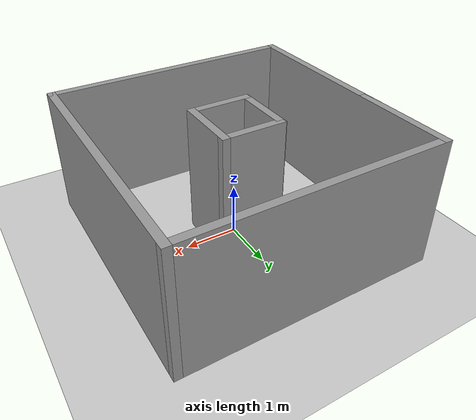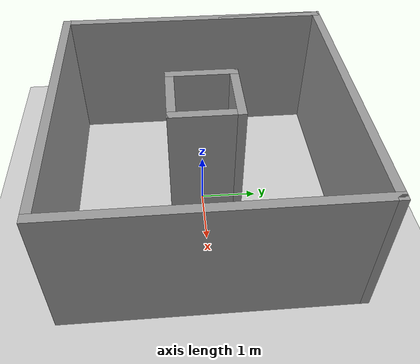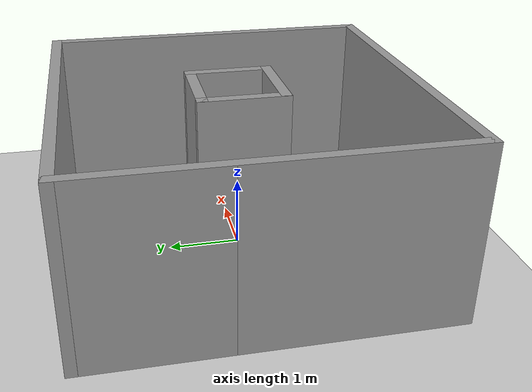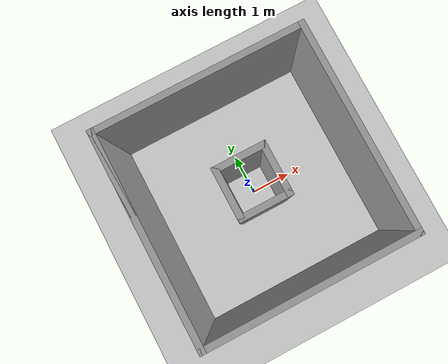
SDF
<sdf version="1.6">
 <world name="default">
  <light name="sun" type="directional">
   <pose>0 0 10 0 -0 0</pose>
   <diffuse>0.8 0.8 0.8 1</diffuse>
   <specular>0.2 0.2 0.2 1</specular>
   <attenuation>
    <range>1000</range>
    <constant>0.9</constant>
    <linear>0.01</linear>
    <quadratic>0.001</quadratic>
   </attenuation>
   <direction>-0.5 0.1 -0.9</direction>
  </light>
  <model name="ground_plane">
   <static>1</static>
   <link name="link">
    <collision name="collision">
     <geometry><plane><normal>0 0 1</normal><size>100 100</size></plane></geometry>
     <surface>
      <contact><collide_bitmask>65535</collide_bitmask></contact>
      <friction><ode><mu>100</mu><mu2>50</mu2></ode></friction>
     </surface>
    </collision>
    <visual name="visual">
     <cast_shadows>0</cast_shadows>
     <geometry><plane><normal>0 0 1</normal><size>100 100</size></plane></geometry>
     <material>
      <script><uri>file://media/materials/scripts/gazebo.material</uri><name>Gazebo/Grey</name></script>
     </material>
    </visual>
   </link>
  </model>
  <gravity>0 0 -9.8</gravity>
  <magnetic_field>6e-06 2.3e-05 -4.2e-05</magnetic_field>
  <atmosphere type="adiabatic"/>
  <physics name="default_physics" default="0" type="ode">
   <max_step_size>0.001</max_step_size>
   <real_time_factor>1</real_time_factor>
   <real_time_update_rate>1000</real_time_update_rate>
  </physics>
  <scene><ambient>0.4 0.4 0.4 1</ambient><background>0.7 0.7 0.7 1</background><shadows>1</shadows></scene>
  <spherical_coordinates>
   <surface_model>EARTH_WGS84</surface_model>
   <latitude_deg>0</latitude_deg>
   <longitude_deg>0</longitude_deg>
   <elevation>0</elevation>
   <heading_deg>0</heading_deg>
  </spherical_coordinates>
  <model name="train_ma_08">
   <link name="Wall_0">
    <collision name="Wall_0_Collision">
     <geometry><box><size>5 0.15 2.5</size></box></geometry>
     <pose>0 0 1.25 0 -0 0</pose>
    </collision>
    <visual name="Wall_0_Visual">
     <pose>0 0 1.25 0 -0 0</pose>
     <geometry><box><size>5 0.15 2.5</size></box></geometry>
     <material>
      <script><uri>file://media/materials/scripts/gazebo.material</uri><name>Gazebo/Grey</name></script>
      <ambient>1 1 1 1</ambient>
     </material>
     <meta><layer>0</layer></meta>
    </visual>
    <pose>-2.425 0 0 0 0 -1.5708</pose>
   </link>
   <link name="Wall_1">
    <collision name="Wall_1_Collision">
     <geometry><box><size>5 0.15 2.5</size></box></geometry>
     <pose>0 0 1.25 0 -0 0</pose>
    </collision>
    <visual name="Wall_1_Visual">
     <pose>0 0 1.25 0 -0 0</pose>
     <geometry><box><size>5 0.15 2.5</size></box></geometry>
     <material>
      <script><uri>file://media/materials/scripts/gazebo.material</uri><name>Gazebo/Grey</name></script>
      <ambient>1 1 1 1</ambient>
     </material>
     <meta><layer>0</layer></meta>
    </visual>
    <pose>0 -2.425 0 0 -0 0</pose>
   </link>
   <link name="Wall_10">
    <collision name="Wall_10_Collision">
     <geometry><box><size>1.25 0.15 2.5</size></box></geometry>
     <pose>0 0 1.25 0 -0 0</pose>
    </collision>
    <visual name="Wall_10_Visual">
     <pose>0 0 1.25 0 -0 0</pose>
     <geometry><box><size>1.25 0.15 2.5</size></box></geometry>
     <material>
      <script><uri>file://media/materials/scripts/gazebo.material</uri><name>Gazebo/Grey</name></script>
      <ambient>1 1 1 1</ambient>
     </material>
     <meta><layer>0</layer></meta>
    </visual>
    <pose>-0.565 0.025 0 0 0 -1.5708</pose>
   </link>
   <link name="Wall_13">
    <collision name="Wall_13_Collision">
     <geometry><box><size>1.25 0.15 2.5</size></box></geometry>
     <pose>0 0 1.25 0 -0 0</pose>
    </collision>
    <visual name="Wall_13_Visual">
     <pose>0 0 1.25 0 -0 0</pose>
     <geometry><box><size>1.25 0.15 2.5</size></box></geometry>
     <material>
      <script><uri>file://media/materials/scripts/gazebo.material</uri><name>Gazebo/Grey</name></script>
      <ambient>1 1 1 1</ambient>
     </material>
     <meta><layer>0</layer></meta>
    </visual>
    <pose>0.525 0.025 0 0 -0 1.5708</pose>
   </link>
   <link name="Wall_17">
    <collision name="Wall_17_Collision">
     <geometry><box><size>1.23 0.15 2.5</size></box></geometry>
     <pose>0 0 1.25 0 -0 0</pose>
    </collision>
    <visual name="Wall_17_Visual">
     <pose>0 0 1.25 0 -0 0</pose>
     <geometry><box><size>1.23 0.15 2.5</size></box></geometry>
     <material>
      <script><uri>file://media/materials/scripts/gazebo.material</uri><name>Gazebo/Grey</name></script>
      <ambient>1 1 1 1</ambient>
     </material>
     <meta><layer>0</layer></meta>
    </visual>
    <pose>-0.015 -0.525 0 0 -0 3.14159</pose>
   </link>
   <link name="Wall_2">
    <collision name="Wall_2_Collision">
     <geometry><box><size>5 0.15 2.5</size></box></geometry>
     <pose>0 0 1.25 0 -0 0</pose>
    </collision>
    <visual name="Wall_2_Visual">
     <pose>0 0 1.25 0 -0 0</pose>
     <geometry><box><size>5 0.15 2.5</size></box></geometry>
     <material>
      <script><uri>file://media/materials/scripts/gazebo.material</uri><name>Gazebo/Grey</name></script>
      <ambient>1 1 1 1</ambient>
     </material>
     <meta><layer>0</layer></meta>
    </visual>
    <pose>2.425 0 0 0 -0 1.5708</pose>
   </link>
   <link name="Wall_3">
    <collision name="Wall_3_Collision">
     <geometry><box><size>5 0.15 2.5</size></box></geometry>
     <pose>0 0 1.25 0 -0 0</pose>
    </collision>
    <visual name="Wall_3_Visual">
     <pose>0 0 1.25 0 -0 0</pose>
     <geometry><box><size>5 0.15 2.5</size></box></geometry>
     <material>
      <script><uri>file://media/materials/scripts/gazebo.material</uri><name>Gazebo/Grey</name></script>
      <ambient>1 1 1 1</ambient>
     </material>
     <meta><layer>0</layer></meta>
    </visual>
    <pose>0 2.425 0 0 -0 3.14159</pose>
   </link>
   <link name="Wall_4">
    <collision name="Wall_4_Collision">
     <geometry><box><size>2 0.15 2.5</size></box></geometry>
     <pose>0 0 1.25 0 -0 0</pose>
    </collision>
    <visual name="Wall_4_Visual">
     <pose>0 0 1.25 0 -0 0</pose>
     <geometry><box><size>2 0.15 2.5</size></box></geometry>
     <material>
      <script><uri>file://media/materials/scripts/gazebo.material</uri><name>Gazebo/Grey</name></script>
      <ambient>1 1 1 1</ambient>
     </material>
     <meta><layer>0</layer></meta>
    </visual>
    <pose>-2.425 1.5 0 0 0 -1.5708</pose>
   </link>
   <link name="Wall_6">
    <collision name="Wall_6_Collision">
     <geometry><box><size>1.23 0.15 2.5</size></box></geometry>
     <pose>0 0 1.25 0 -0 0</pose>
    </collision>
    <visual name="Wall_6_Visual">
     <pose>0 0 1.25 0 -0 0</pose>
     <geometry><box><size>1.23 0.15 2.5</size></box></geometry>
     <material>
      <script><uri>file://media/materials/scripts/gazebo.material</uri><name>Gazebo/Grey</name></script>
      <ambient>1 1 1 1</ambient>
     </material>
     <meta><layer>0</layer></meta>
    </visual>
    <pose>-0.015 0.575 0 0 -0 0</pose>
   </link>
   <static>1</static>
  </model>
 </world>
</sdf>
